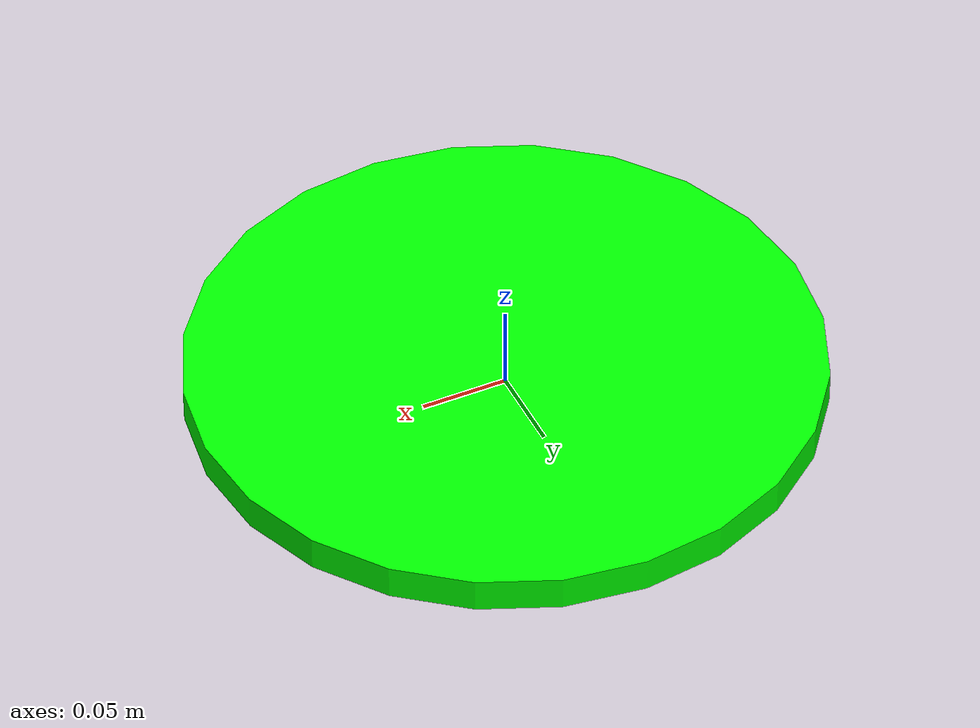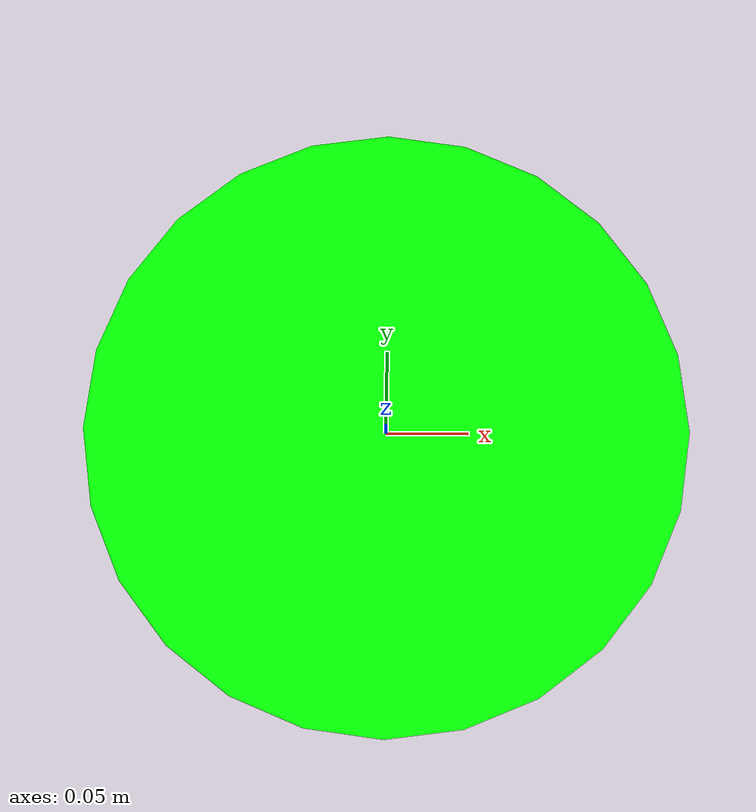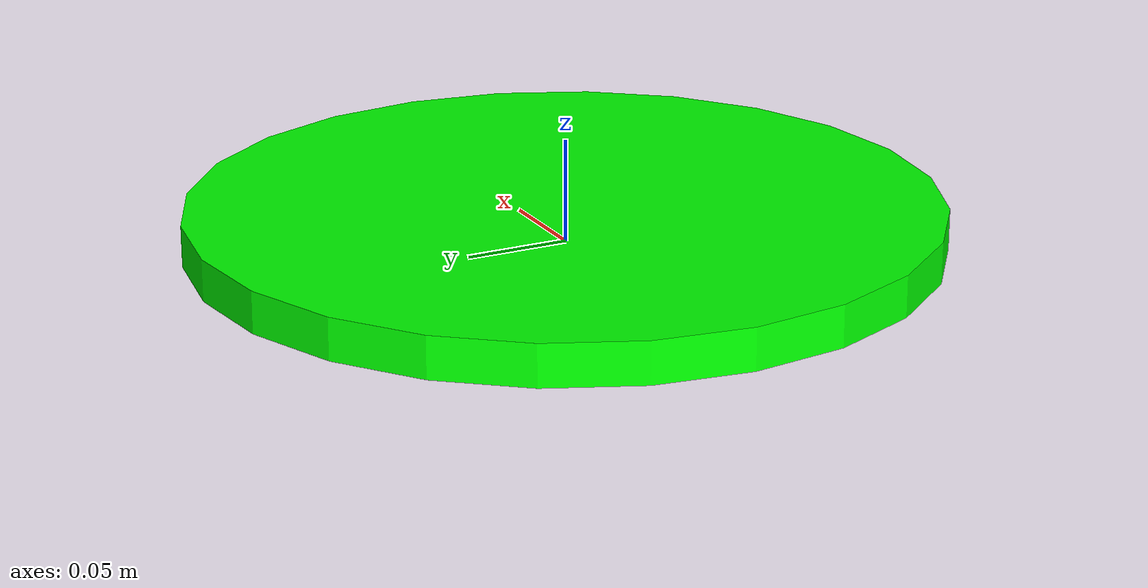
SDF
<?xml version="1.0"?>
<sdf version="1.6">
    <model name="d3im3r_goal_marker">
        <static>true</static>

        <link name="goal_link">
            <visual name="goal_visual">
                <pose>0 0 0.01 0 0 0</pose>
                <geometry>
                    <cylinder>
                        <radius>0.18</radius>
                        <length>0.02</length>
                    </cylinder>
                </geometry>
                <material>
                    <ambient>0.0 1.0 0.0 1.0</ambient>
                    <diffuse>0.0 1.0 0.0 1.0</diffuse>
                </material>
            </visual>

            <collision name="goal_collision">
                <pose>0 0 0.01 0 0 0</pose>
                <geometry>
                    <cylinder>
                        <radius>0.18</radius>
                        <length>0.02</length>
                    </cylinder>
                </geometry>
            </collision>
        </link>
    </model>
</sdf>
